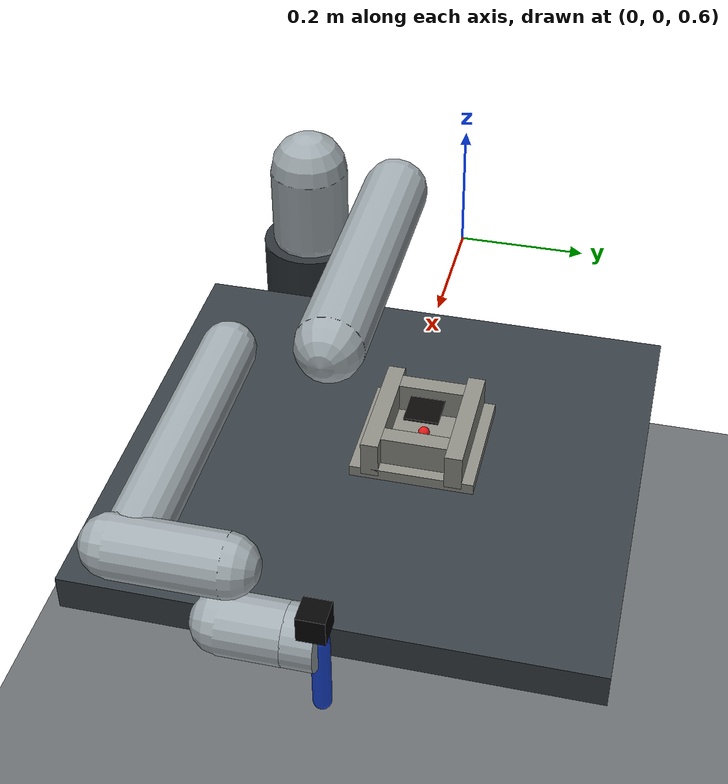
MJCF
<mujoco model="ur5e_peg_in_hole_adapter">
  <compiler angle="radian" autolimits="true"/>
  <option timestep="0.002" gravity="0 0 -9.81" integrator="implicitfast"/>
  <visual>
    <global offwidth="2560" offheight="1440"/>
  </visual>
  <custom>
    <numeric name="ik_joint_count" data="6"/>
  </custom>

  <default>
    <default class="ur5e">
      <joint axis="0 1 0" range="-6.28319 6.28319" armature="0.1" damping="2.0" limited="true"/>
      <general gaintype="fixed" biastype="affine" ctrlrange="-6.2831 6.2831" gainprm="2000" biasprm="0 -2000 -400" forcerange="-150 150"/>
      <geom friction="1.0 0.005 0.0001" solref="0.01 1" solimp="0.95 0.95 0.001"/>
      <default class="size3">
        <default class="size3_limited">
          <joint range="-3.1415 3.1415"/>
          <general ctrlrange="-3.1415 3.1415"/>
        </default>
      </default>
      <default class="size1">
        <general gainprm="500" biasprm="0 -500 -100" forcerange="-28 28"/>
      </default>
      <default class="robot_collision">
        <geom type="capsule" rgba="0.64 0.68 0.7 1" density="650" contype="0" conaffinity="0"/>
      </default>
    </default>
  </default>

  <asset>
    <material name="mat_floor" rgba="0.42 0.43 0.44 1"/>
    <material name="mat_table" rgba="0.22 0.25 0.27 1"/>
    <material name="mat_hole" rgba="0.55 0.55 0.52 1"/>
    <material name="mat_hole_cavity" rgba="0.035 0.032 0.028 1"/>
    <material name="mat_peg" rgba="0.1 0.28 0.85 1"/>
    <material name="mat_camera" rgba="0.02 0.02 0.02 1"/>
    <mesh name="peg_hex_mesh" vertex="-0.00600000 0.01039230 0.05500000 -0.01200000 0.00000000 0.05500000 -0.00600000 -0.01039230 0.05500000 0.00600000 -0.01039230 0.05500000 0.01200000 -0.00000000 0.05500000 0.00600000 0.01039230 0.05500000 -0.00600000 0.01039230 -0.05500000 -0.01200000 0.00000000 -0.05500000 -0.00600000 -0.01039230 -0.05500000 0.00600000 -0.01039230 -0.05500000 0.01200000 -0.00000000 -0.05500000 0.00600000 0.01039230 -0.05500000" face="0 1 2 0 2 3 0 3 4 0 4 5 6 8 7 6 9 8 6 10 9 6 11 10 0 1 7 0 7 6 1 2 8 1 8 7 2 3 9 2 9 8 3 4 10 3 10 9 4 5 11 4 11 10 5 0 6 5 6 11"/>
    <mesh name="peg_triangle_mesh" vertex="-0.01039230 0.00600000 0.05500000 -0.00000000 -0.01200000 0.05500000 0.01039230 0.00600000 0.05500000 -0.01039230 0.00600000 -0.05500000 -0.00000000 -0.01200000 -0.05500000 0.01039230 0.00600000 -0.05500000" face="0 1 2 3 5 4 0 1 4 0 4 3 1 2 5 1 5 4 2 0 3 2 3 5"/>
  </asset>

  <worldbody>
    <light name="key_light" pos="0.2 -0.5 1.7" dir="-0.2 0.4 -1" diffuse="0.9 0.9 0.85"/>
    <light name="fill_light" pos="0.8 0.6 1.2" dir="-0.5 -0.4 -1" diffuse="0.35 0.38 0.42"/>
    <camera name="overview" pos="1.25 -1.05 1.2" xyaxes="0.65 0.76 0 -0.34 0.29 0.89" fovy="45"/>

    <geom name="floor" type="plane" size="2 2 0.02" material="mat_floor"/>
    <geom name="table_top" type="box" pos="0.575 0 0.60" size="0.325 0.35 0.025" material="mat_table"/>

    <body name="hole_body" mocap="true" pos="0.55 0.05 0.65">
      <geom name="hole_plate" type="box" pos="0 0 -0.012" size="0.085 0.085 0.008" material="mat_hole"/>
      <geom name="hole_cavity_visual" type="box" pos="0 0 0.040" size="0.024 0.024 0.0015" material="mat_hole_cavity" rgba="0.035 0.032 0.028 1" contype="0" conaffinity="0"/>
      <geom name="hole_north" type="box" pos="0 0.057 0.012" size="0.085 0.012 0.026" material="mat_hole"/>
      <geom name="hole_south" type="box" pos="0 -0.057 0.012" size="0.085 0.012 0.026" material="mat_hole"/>
      <geom name="hole_east" type="box" pos="0.057 0 0.012" size="0.012 0.045 0.026" material="mat_hole"/>
      <geom name="hole_west" type="box" pos="-0.057 0 0.012" size="0.012 0.045 0.026" material="mat_hole"/>
      <geom name="hole_aux_0" type="box" pos="0 0 -1" size="0.001 0.001 0.001" material="mat_hole" contype="0" conaffinity="0" rgba="0 0 0 0"/>
      <geom name="hole_aux_1" type="box" pos="0 0 -1" size="0.001 0.001 0.001" material="mat_hole" contype="0" conaffinity="0" rgba="0 0 0 0"/>
      <geom name="hole_aux_2" type="box" pos="0 0 -1" size="0.001 0.001 0.001" material="mat_hole" contype="0" conaffinity="0" rgba="0 0 0 0"/>
      <geom name="hole_aux_3" type="box" pos="0 0 -1" size="0.001 0.001 0.001" material="mat_hole" contype="0" conaffinity="0" rgba="0 0 0 0"/>
      <geom name="hole_aux_4" type="box" pos="0 0 -1" size="0.001 0.001 0.001" material="mat_hole" contype="0" conaffinity="0" rgba="0 0 0 0"/>
      <geom name="hole_aux_5" type="box" pos="0 0 -1" size="0.001 0.001 0.001" material="mat_hole" contype="0" conaffinity="0" rgba="0 0 0 0"/>
      <geom name="hole_aux_6" type="box" pos="0 0 -1" size="0.001 0.001 0.001" material="mat_hole" contype="0" conaffinity="0" rgba="0 0 0 0"/>
      <geom name="hole_aux_7" type="box" pos="0 0 -1" size="0.001 0.001 0.001" material="mat_hole" contype="0" conaffinity="0" rgba="0 0 0 0"/>
      <geom name="hole_polygon_visual_0" type="box" pos="0 0 -1" size="0.001 0.001 0.001" material="mat_hole" contype="0" conaffinity="0" rgba="0 0 0 0"/>
      <geom name="hole_polygon_visual_1" type="box" pos="0 0 -1" size="0.001 0.001 0.001" material="mat_hole" contype="0" conaffinity="0" rgba="0 0 0 0"/>
      <geom name="hole_polygon_visual_2" type="box" pos="0 0 -1" size="0.001 0.001 0.001" material="mat_hole" contype="0" conaffinity="0" rgba="0 0 0 0"/>
      <geom name="hole_polygon_visual_3" type="box" pos="0 0 -1" size="0.001 0.001 0.001" material="mat_hole" contype="0" conaffinity="0" rgba="0 0 0 0"/>
      <geom name="hole_polygon_visual_4" type="box" pos="0 0 -1" size="0.001 0.001 0.001" material="mat_hole" contype="0" conaffinity="0" rgba="0 0 0 0"/>
      <geom name="hole_polygon_visual_5" type="box" pos="0 0 -1" size="0.001 0.001 0.001" material="mat_hole" contype="0" conaffinity="0" rgba="0 0 0 0"/>
      <site name="hole_site" pos="0 0 0" size="0.008" rgba="0.9 0.1 0.1 1"/>
      <camera name="hole_top" pos="0 0 0.20" xyaxes="1 0 0 0 1 0" fovy="35"/>
    </body>

    <body name="base" pos="0.136 -0.223 0.602" childclass="ur5e">
      <inertial mass="4.0" pos="0 0 0" diaginertia="0.00443333156 0.00443333156 0.0072"/>
      <geom name="base_geom" type="cylinder" size="0.075 0.055" rgba="0.18 0.2 0.22 1" density="900" contype="0" conaffinity="0"/>

      <body name="shoulder_link" pos="0 0 0.163">
        <inertial mass="3.7" pos="0 0 0" diaginertia="0.0102675 0.0102675 0.00666"/>
        <joint name="shoulder_pan" class="size3" axis="0 0 1"/>
        <geom name="shoulder_geom" type="capsule" size="0.06 0.06" pos="0 0 -0.04" class="robot_collision"/>

        <body name="upper_arm_link" pos="0 0.138 0" quat="1 0 1 0">
          <inertial mass="8.393" pos="0 0 0.2125" diaginertia="0.133886 0.133886 0.0151074"/>
          <joint name="shoulder_lift" class="size3"/>
          <geom name="upper_arm_geom" type="capsule" size="0.05 0.2" pos="0 0 0.2" class="robot_collision"/>

          <body name="forearm_link" pos="0 -0.131 0.425">
            <inertial mass="2.275" pos="0 0 0.196" diaginertia="0.0311796 0.0311796 0.004095"/>
            <joint name="elbow" class="size3_limited"/>
            <geom name="forearm_geom" type="capsule" size="0.038 0.19" pos="0 0 0.2" class="robot_collision"/>

            <body name="wrist_1_link" pos="0 0 0.392" quat="1 0 1 0">
              <inertial mass="1.219" pos="0 0.127 0" diaginertia="0.0025599 0.0025599 0.0021942"/>
              <joint name="wrist_1" class="size1"/>
              <geom name="wrist_1_geom" type="capsule" size="0.04 0.07" pos="0 0.05 0" quat="1 1 0 0" class="robot_collision"/>

              <body name="wrist_2_link" pos="0 0.127 0">
                <inertial mass="1.219" pos="0 0 0.1" diaginertia="0.0025599 0.0025599 0.0021942"/>
                <joint name="wrist_2" axis="0 0 1" class="size1"/>
                <geom name="wrist_2_geom" type="capsule" size="0.04 0.04" pos="0 0.02 0.1" quat="1 1 0 0" class="robot_collision"/>

                <body name="wrist_3_link" pos="0 0 0.1">
                  <inertial mass="0.1889" pos="0 0.0771683 0" quat="1 0 0 1" diaginertia="0.000132134 9.90863e-05 9.90863e-05"/>
                  <joint name="wrist_3" class="size1"/>
                  <geom name="wrist_3_geom" type="cylinder" size="0.04 0.02" pos="0 0.08 0" quat="1 1 0 0" rgba="0.64 0.68 0.7 1" density="650" contype="0" conaffinity="0"/>

                  <body name="tool0" pos="0 0.1 0" quat="0 1 0 0">
                    <geom name="camera_geom" type="box" pos="-0.02 0 0.055" size="0.018 0.018 0.018" material="mat_camera" density="200" contype="0" conaffinity="0"/>
                    <geom name="peg_geom" type="capsule" fromto="0 0 0 0 0 -0.11" size="0.012" material="mat_peg" density="780"/>
                    <site name="eef_site" pos="0 0 0" size="0.01" rgba="0 0.8 0.2 1"/>
                    <site name="peg_tip" pos="0 0 -0.11" size="0.008" rgba="0.1 0.9 0.1 1"/>
                    <camera
                      name="wrist_cam"
                      pos="-0.09 0.12 0.16"
                      xyaxes="-0.548392 0.766151 0.335081 -0.835508 -0.518563 -0.181712"
                      fovy="100"/>
                  </body>
                </body>
              </body>
            </body>
          </body>
        </body>
      </body>
    </body>
  </worldbody>

  <actuator>
    <position name="shoulder_pan_ctrl" joint="shoulder_pan" kp="2200" ctrlrange="-6.2831 6.2831" forcerange="-150 150"/>
    <position name="shoulder_lift_ctrl" joint="shoulder_lift" kp="2400" ctrlrange="-6.2831 6.2831" forcerange="-150 150"/>
    <position name="elbow_ctrl" joint="elbow" kp="2200" ctrlrange="-3.1415 3.1415" forcerange="-150 150"/>
    <position name="wrist_1_ctrl" joint="wrist_1" kp="900" ctrlrange="-6.2831 6.2831" forcerange="-28 28"/>
    <position name="wrist_2_ctrl" joint="wrist_2" kp="700" ctrlrange="-6.2831 6.2831" forcerange="-28 28"/>
    <position name="wrist_3_ctrl" joint="wrist_3" kp="700" ctrlrange="-6.2831 6.2831" forcerange="-28 28"/>
  </actuator>

  <keyframe>
    <key name="home" qpos="-1.5708 -1.5708 1.5708 -1.5708 -1.5708 0" ctrl="-1.5708 -1.5708 1.5708 -1.5708 -1.5708 0"/>
  </keyframe>
</mujoco>
